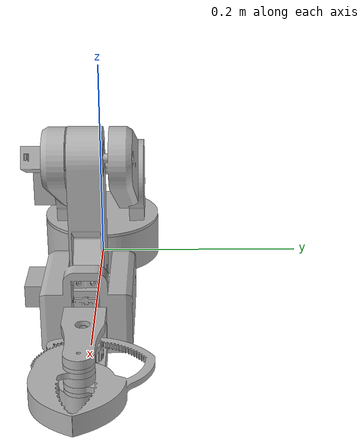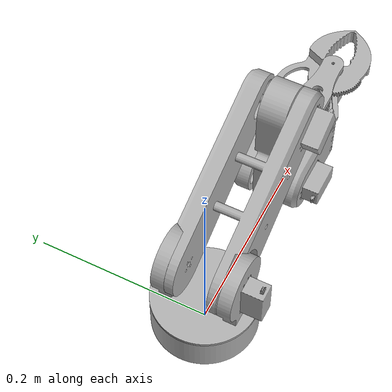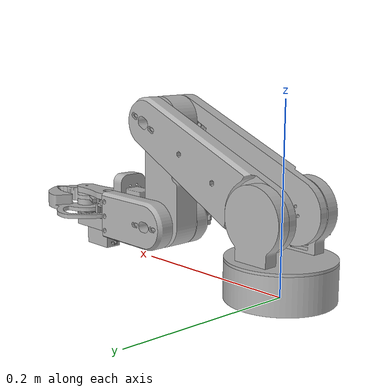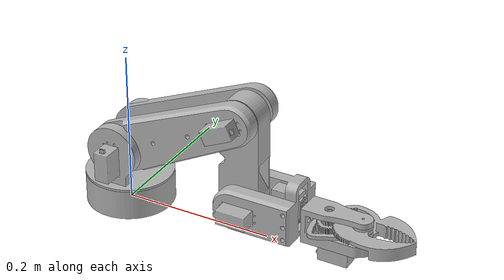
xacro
<?xml version="1.0" ?>
<robot name="braco_v2" xmlns:xacro="http://www.ros.org/wiki/xacro">

<xacro:include filename="$(find braco_v2_description)/urdf/materials.xacro" />
<xacro:include filename="$(find braco_v2_description)/urdf/braco_v2.trans" />
<xacro:include filename="$(find braco_v2_description)/urdf/braco_v2.gazebo" />
<link name="base_link">
  <inertial>
    <origin rpy="0 0 0" xyz="0.0 4.4408920985006264e-17 0.019999999999999983"/>
    <mass value="0.4404041661434851"/>
    <inertia ixx="0.000423" ixy="0.0" ixz="-0.0" iyy="0.000423" iyz="0.0" izz="0.000728"/>
  </inertial>
  <visual>
    <origin rpy="0 0 0" xyz="0 0 0"/>
    <geometry>
      <mesh filename="package://braco_v2_description/meshes/base_link.stl" scale="0.001 0.001 0.001"/>
    </geometry>
    <material name="silver"/>
  </visual>
  <collision>
    <origin rpy="0 0 0" xyz="0 0 0"/>
    <geometry>
      <mesh filename="package://braco_v2_description/meshes/base_link.stl" scale="0.001 0.001 0.001"/>
    </geometry>
  </collision>
</link>

<link name="Center_arm_v1_1">
  <inertial>
    <origin rpy="0 0 0" xyz="0.014277150157445656 0.009887184158138248 -0.05601557501701446"/>
    <mass value="0.24743903954578314"/>
    <inertia ixx="0.000535" ixy="0.0" ixz="0.000118" iyy="0.000605" iyz="-0.0" izz="0.000106"/>
  </inertial>
  <visual>
    <origin rpy="0 0 0" xyz="-0.142342 0.011691 -0.205954"/>
    <geometry>
      <mesh filename="package://braco_v2_description/meshes/Center_arm_v1_1.stl" scale="0.001 0.001 0.001"/>
    </geometry>
    <material name="silver"/>
  </visual>
  <collision>
    <origin rpy="0 0 0" xyz="-0.142342 0.011691 -0.205954"/>
    <geometry>
      <mesh filename="package://braco_v2_description/meshes/Center_arm_v1_1.stl" scale="0.001 0.001 0.001"/>
    </geometry>
  </collision>
</link>

<link name="Center_arm_bearing_guide_v1_1">
  <inertial>
    <origin rpy="0 0 0" xyz="-0.01039213224987559 0.003221962356880813 0.00600019094374038"/>
    <mass value="0.0033035453927957375"/>
    <inertia ixx="0.0" ixy="0.0" ixz="-0.0" iyy="0.0" iyz="-0.0" izz="0.0"/>
  </inertial>
  <visual>
    <origin rpy="0 0 0" xyz="-0.152734 -0.008309 -0.199954"/>
    <geometry>
      <mesh filename="package://braco_v2_description/meshes/Center_arm_bearing_guide_v1_1.stl" scale="0.001 0.001 0.001"/>
    </geometry>
    <material name="silver"/>
  </visual>
  <collision>
    <origin rpy="0 0 0" xyz="-0.152734 -0.008309 -0.199954"/>
    <geometry>
      <mesh filename="package://braco_v2_description/meshes/Center_arm_bearing_guide_v1_1.stl" scale="0.001 0.001 0.001"/>
    </geometry>
  </collision>
</link>

<link name="Center_arm_bearing_guide_v1__1__1">
  <inertial>
    <origin rpy="0 0 0" xyz="-0.0059998944503106 0.003221962356879297 -0.010392093645181094"/>
    <mass value="0.0033035453927957375"/>
    <inertia ixx="0.0" ixy="0.0" ixz="0.0" iyy="0.0" iyz="0.0" izz="0.0"/>
  </inertial>
  <visual>
    <origin rpy="0 0 0" xyz="-0.178753 -0.008309 -0.10285"/>
    <geometry>
      <mesh filename="package://braco_v2_description/meshes/Center_arm_bearing_guide_v1__1__1.stl" scale="0.001 0.001 0.001"/>
    </geometry>
    <material name="silver"/>
  </visual>
  <collision>
    <origin rpy="0 0 0" xyz="-0.178753 -0.008309 -0.10285"/>
    <geometry>
      <mesh filename="package://braco_v2_description/meshes/Center_arm_bearing_guide_v1__1__1.stl" scale="0.001 0.001 0.001"/>
    </geometry>
  </collision>
</link>

<link name="Center_arm_bearing_guide_clamp_v1_1">
  <inertial>
    <origin rpy="0 0 0" xyz="-1.322497980571491e-07 0.0016578450305448425 1.9094379913320303e-07"/>
    <mass value="0.00026744770959091237"/>
    <inertia ixx="0.0" ixy="-0.0" ixz="0.0" iyy="0.0" iyz="-0.0" izz="0.0"/>
  </inertial>
  <visual>
    <origin rpy="0 0 0" xyz="-0.142342 -0.021709 -0.205954"/>
    <geometry>
      <mesh filename="package://braco_v2_description/meshes/Center_arm_bearing_guide_clamp_v1_1.stl" scale="0.001 0.001 0.001"/>
    </geometry>
    <material name="silver"/>
  </visual>
  <collision>
    <origin rpy="0 0 0" xyz="-0.142342 -0.021709 -0.205954"/>
    <geometry>
      <mesh filename="package://braco_v2_description/meshes/Center_arm_bearing_guide_clamp_v1_1.stl" scale="0.001 0.001 0.001"/>
    </geometry>
  </collision>
</link>

<link name="servo_elbow_1">
  <inertial>
    <origin rpy="0 0 0" xyz="0.15754580602873644 0.20794860786324015 -0.030115300811952045"/>
    <mass value="0.2525786066068201"/>
    <inertia ixx="5.2e-05" ixy="-0.0" ixz="-1.4e-05" iyy="4.4e-05" iyz="-0.0" izz="5.7e-05"/>
  </inertial>
  <visual>
    <origin rpy="0 0 0" xyz="0.022846 0.244866 -0.229657"/>
    <geometry>
      <mesh filename="package://braco_v2_description/meshes/servo_elbow_1.stl" scale="0.001 0.001 0.001"/>
    </geometry>
    <material name="silver"/>
  </visual>
  <collision>
    <origin rpy="0 0 0" xyz="0.022846 0.244866 -0.229657"/>
    <geometry>
      <mesh filename="package://braco_v2_description/meshes/servo_elbow_1.stl" scale="0.001 0.001 0.001"/>
    </geometry>
  </collision>
</link>

<link name="servo_punho_rot_1">
  <inertial>
    <origin rpy="0 0 0" xyz="0.14034378523693494 -0.10986496796742812 -0.22086481094673482"/>
    <mass value="0.25257832542625036"/>
    <inertia ixx="4.4e-05" ixy="-0.0" ixz="1e-06" iyy="6.8e-05" iyz="0.0" izz="4.1e-05"/>
  </inertial>
  <visual>
    <origin rpy="0 0 0" xyz="-0.093832 -0.110262 -0.322983"/>
    <geometry>
      <mesh filename="package://braco_v2_description/meshes/servo_punho_rot_1.stl" scale="0.001 0.001 0.001"/>
    </geometry>
    <material name="silver"/>
  </visual>
  <collision>
    <origin rpy="0 0 0" xyz="-0.093832 -0.110262 -0.322983"/>
    <geometry>
      <mesh filename="package://braco_v2_description/meshes/servo_punho_rot_1.stl" scale="0.001 0.001 0.001"/>
    </geometry>
  </collision>
</link>

<link name="servo_punho_xy_1">
  <inertial>
    <origin rpy="0 0 0" xyz="0.009976146320704926 -0.02522641850043935 -6.558513723775583e-08"/>
    <mass value="0.25257832542625036"/>
    <inertia ixx="4.1e-05" ixy="1e-06" ixz="0.0" iyy="4.4e-05" iyz="-0.0" izz="6.8e-05"/>
  </inertial>
  <visual>
    <origin rpy="0 0 0" xyz="-0.172753 0.011691 -0.092458"/>
    <geometry>
      <mesh filename="package://braco_v2_description/meshes/servo_punho_xy_1.stl" scale="0.001 0.001 0.001"/>
    </geometry>
    <material name="silver"/>
  </visual>
  <collision>
    <origin rpy="0 0 0" xyz="-0.172753 0.011691 -0.092458"/>
    <geometry>
      <mesh filename="package://braco_v2_description/meshes/servo_punho_xy_1.stl" scale="0.001 0.001 0.001"/>
    </geometry>
  </collision>
</link>

<link name="punho_1">
  <inertial>
    <origin rpy="0 0 0" xyz="-0.1328033049390942 0.12072689824420818 0.028960027873234748"/>
    <mass value="0.21880690583277723"/>
    <inertia ixx="0.000235" ixy="1.1e-05" ixz="-7e-06" iyy="0.000273" iyz="0.0" izz="0.000371"/>
  </inertial>
  <visual>
    <origin rpy="0 0 0" xyz="-0.342104 0.118081 -0.064457"/>
    <geometry>
      <mesh filename="package://braco_v2_description/meshes/punho_1.stl" scale="0.001 0.001 0.001"/>
    </geometry>
    <material name="silver"/>
  </visual>
  <collision>
    <origin rpy="0 0 0" xyz="-0.342104 0.118081 -0.064457"/>
    <geometry>
      <mesh filename="package://braco_v2_description/meshes/punho_1.stl" scale="0.001 0.001 0.001"/>
    </geometry>
  </collision>
</link>

<link name="Center_arm_bearing_guide_clamp_v1_punho_1">
  <inertial>
    <origin rpy="0 0 0" xyz="1.05549629869639e-07 0.0016578450305445892 -9.36450987448767e-08"/>
    <mass value="0.00026744770959091237"/>
    <inertia ixx="0.0" ixy="0.0" ixz="-0.0" iyy="0.0" iyz="-0.0" izz="0.0"/>
  </inertial>
  <visual>
    <origin rpy="0 0 0" xyz="-0.172753 -0.021709 -0.092458"/>
    <geometry>
      <mesh filename="package://braco_v2_description/meshes/Center_arm_bearing_guide_clamp_v1_punho_1.stl" scale="0.001 0.001 0.001"/>
    </geometry>
    <material name="silver"/>
  </visual>
  <collision>
    <origin rpy="0 0 0" xyz="-0.172753 -0.021709 -0.092458"/>
    <geometry>
      <mesh filename="package://braco_v2_description/meshes/Center_arm_bearing_guide_clamp_v1_punho_1.stl" scale="0.001 0.001 0.001"/>
    </geometry>
  </collision>
</link>

<link name="corpo_garra_1">
  <inertial>
    <origin rpy="0 0 0" xyz="0.03690104485756707 3.972525702432197e-09 -0.004369986373359419"/>
    <mass value="0.0475742677792808"/>
    <inertia ixx="2e-05" ixy="-0.0" ixz="2e-06" iyy="5.2e-05" iyz="0.0" izz="4.3e-05"/>
  </inertial>
  <visual>
    <origin rpy="0 0 0" xyz="-0.259402 -0.000397 -0.092142"/>
    <geometry>
      <mesh filename="package://braco_v2_description/meshes/corpo_garra_1.stl" scale="0.001 0.001 0.001"/>
    </geometry>
    <material name="silver"/>
  </visual>
  <collision>
    <origin rpy="0 0 0" xyz="-0.259402 -0.000397 -0.092142"/>
    <geometry>
      <mesh filename="package://braco_v2_description/meshes/corpo_garra_1.stl" scale="0.001 0.001 0.001"/>
    </geometry>
  </collision>
</link>

<link name="Bearing_guide_v1_1">
  <inertial>
    <origin rpy="0 0 0" xyz="4.6121928154452263e-07 3.97206351886387e-09 0.01725014828221419"/>
    <mass value="0.0016815613439380714"/>
    <inertia ixx="0.0" ixy="0.0" ixz="-0.0" iyy="0.0" iyz="-0.0" izz="0.0"/>
  </inertial>
  <visual>
    <origin rpy="0 0 0" xyz="-0.334152 -0.000397 -0.074892"/>
    <geometry>
      <mesh filename="package://braco_v2_description/meshes/Bearing_guide_v1_1.stl" scale="0.001 0.001 0.001"/>
    </geometry>
    <material name="silver"/>
  </visual>
  <collision>
    <origin rpy="0 0 0" xyz="-0.334152 -0.000397 -0.074892"/>
    <geometry>
      <mesh filename="package://braco_v2_description/meshes/Bearing_guide_v1_1.stl" scale="0.001 0.001 0.001"/>
    </geometry>
  </collision>
</link>

<link name="Bearing_top-bottom_bushing_v1_1">
  <inertial>
    <origin rpy="0 0 0" xyz="4.6121928093389997e-07 3.972462620622456e-09 -0.001749851717786216"/>
    <mass value="0.0016106179771745465"/>
    <inertia ixx="0.0" ixy="0.0" ixz="0.0" iyy="0.0" iyz="-0.0" izz="0.0"/>
  </inertial>
  <visual>
    <origin rpy="0 0 0" xyz="-0.334152 -0.000397 -0.104392"/>
    <geometry>
      <mesh filename="package://braco_v2_description/meshes/Bearing_top-bottom_bushing_v1_1.stl" scale="0.001 0.001 0.001"/>
    </geometry>
    <material name="silver"/>
  </visual>
  <collision>
    <origin rpy="0 0 0" xyz="-0.334152 -0.000397 -0.104392"/>
    <geometry>
      <mesh filename="package://braco_v2_description/meshes/Bearing_top-bottom_bushing_v1_1.stl" scale="0.001 0.001 0.001"/>
    </geometry>
  </collision>
</link>

<link name="Bearing_top-bottom_bushing_v1__1__1">
  <inertial>
    <origin rpy="0 0 0" xyz="4.612192812114557e-07 3.9724627058407465e-09 0.0017501482822140368"/>
    <mass value="0.0016106179771745465"/>
    <inertia ixx="0.0" ixy="0.0" ixz="0.0" iyy="0.0" iyz="-0.0" izz="0.0"/>
  </inertial>
  <visual>
    <origin rpy="0 0 0" xyz="-0.334152 -0.000397 -0.079892"/>
    <geometry>
      <mesh filename="package://braco_v2_description/meshes/Bearing_top-bottom_bushing_v1__1__1.stl" scale="0.001 0.001 0.001"/>
    </geometry>
    <material name="silver"/>
  </visual>
  <collision>
    <origin rpy="0 0 0" xyz="-0.334152 -0.000397 -0.079892"/>
    <geometry>
      <mesh filename="package://braco_v2_description/meshes/Bearing_top-bottom_bushing_v1__1__1.stl" scale="0.001 0.001 0.001"/>
    </geometry>
  </collision>
</link>

<link name="Bearing_center_bushing_v1_1">
  <inertial>
    <origin rpy="0 0 0" xyz="0.09827446121928143 0.04192300397246268 0.11753614828221406"/>
    <mass value="0.0034513242368025996"/>
    <inertia ixx="0.0" ixy="0.0" ixz="0.0" iyy="0.0" iyz="-0.0" izz="0.0"/>
  </inertial>
  <visual>
    <origin rpy="0 0 0" xyz="-0.235878 0.041526 0.025394"/>
    <geometry>
      <mesh filename="package://braco_v2_description/meshes/Bearing_center_bushing_v1_1.stl" scale="0.001 0.001 0.001"/>
    </geometry>
    <material name="silver"/>
  </visual>
  <collision>
    <origin rpy="0 0 0" xyz="-0.235878 0.041526 0.025394"/>
    <geometry>
      <mesh filename="package://braco_v2_description/meshes/Bearing_center_bushing_v1_1.stl" scale="0.001 0.001 0.001"/>
    </geometry>
  </collision>
</link>

<link name="servo_garra_1">
  <inertial>
    <origin rpy="0 0 0" xyz="0.053330533392260265 -0.018574770578143565 0.08636947229986802"/>
    <mass value="0.25257832542625036"/>
    <inertia ixx="4.1e-05" ixy="-0.0" ixz="1e-06" iyy="6.8e-05" iyz="0.0" izz="4.4e-05"/>
  </inertial>
  <visual>
    <origin rpy="0 0 0" xyz="-0.245878 -0.018974 0.025394"/>
    <geometry>
      <mesh filename="package://braco_v2_description/meshes/servo_garra_1.stl" scale="0.001 0.001 0.001"/>
    </geometry>
    <material name="silver"/>
  </visual>
  <collision>
    <origin rpy="0 0 0" xyz="-0.245878 -0.018974 0.025394"/>
    <geometry>
      <mesh filename="package://braco_v2_description/meshes/servo_garra_1.stl" scale="0.001 0.001 0.001"/>
    </geometry>
  </collision>
</link>

<link name="Gripper_120T_v1_1">
  <inertial>
    <origin rpy="0 0 0" xyz="0.010502843706276688 0.0181735244198357 0.006028625191617287"/>
    <mass value="0.031315152970389164"/>
    <inertia ixx="1e-05" ixy="-4e-06" ixz="-3e-06" iyy="4e-05" iyz="-0.0" izz="4.8e-05"/>
  </inertial>
  <visual>
    <origin rpy="0 0 0" xyz="-0.334152 -0.000397 -0.083392"/>
    <geometry>
      <mesh filename="package://braco_v2_description/meshes/Gripper_120T_v1_1.stl" scale="0.001 0.001 0.001"/>
    </geometry>
    <material name="silver"/>
  </visual>
  <collision>
    <origin rpy="0 0 0" xyz="-0.334152 -0.000397 -0.083392"/>
    <geometry>
      <mesh filename="package://braco_v2_description/meshes/Gripper_120T_v1_1.stl" scale="0.001 0.001 0.001"/>
    </geometry>
  </collision>
</link>

<link name="Gripper_72T_v1_1">
  <inertial>
    <origin rpy="0 0 0" xyz="0.020484421154321197 -0.01768686032720145 -0.0012214830647412217"/>
    <mass value="0.0250024753894087"/>
    <inertia ixx="4e-06" ixy="2e-06" ixz="2e-06" iyy="2e-05" iyz="-0.0" izz="2.2e-05"/>
  </inertial>
  <visual>
    <origin rpy="0 0 0" xyz="-0.334152 -0.000397 -0.095892"/>
    <geometry>
      <mesh filename="package://braco_v2_description/meshes/Gripper_72T_v1_1.stl" scale="0.001 0.001 0.001"/>
    </geometry>
    <material name="silver"/>
  </visual>
  <collision>
    <origin rpy="0 0 0" xyz="-0.334152 -0.000397 -0.095892"/>
    <geometry>
      <mesh filename="package://braco_v2_description/meshes/Gripper_72T_v1_1.stl" scale="0.001 0.001 0.001"/>
    </geometry>
  </collision>
</link>

<link name="Servo_gear_v1_1">
  <inertial>
    <origin rpy="0 0 0" xyz="4.926212099354288e-07 2.574818621269492e-07 0.0043180267545464834"/>
    <mass value="0.010154744217590462"/>
    <inertia ixx="1e-06" ixy="0.0" ixz="0.0" iyy="1e-06" iyz="0.0" izz="1e-06"/>
  </inertial>
  <visual>
    <origin rpy="0 0 0" xyz="-0.289232 -0.000399 -0.086202"/>
    <geometry>
      <mesh filename="package://braco_v2_description/meshes/Servo_gear_v1_1.stl" scale="0.001 0.001 0.001"/>
    </geometry>
    <material name="silver"/>
  </visual>
  <collision>
    <origin rpy="0 0 0" xyz="-0.289232 -0.000399 -0.086202"/>
    <geometry>
      <mesh filename="package://braco_v2_description/meshes/Servo_gear_v1_1.stl" scale="0.001 0.001 0.001"/>
    </geometry>
  </collision>
</link>

<link name="servo_right_1">
  <inertial>
    <origin rpy="0 0 0" xyz="0.045095727044045304 0.0126085814995585 0.08368692782702274"/>
    <mass value="0.25257832542625036"/>
    <inertia ixx="6.8e-05" ixy="-0.0" ixz="-0.0" iyy="4.4e-05" iyz="-1e-06" izz="4.1e-05"/>
  </inertial>
  <visual>
    <origin rpy="0 0 0" xyz="0.043653 0.060836 0.007493"/>
    <geometry>
      <mesh filename="package://braco_v2_description/meshes/servo_right_1.stl" scale="0.001 0.001 0.001"/>
    </geometry>
    <material name="silver"/>
  </visual>
  <collision>
    <origin rpy="0 0 0" xyz="0.043653 0.060836 0.007493"/>
    <geometry>
      <mesh filename="package://braco_v2_description/meshes/servo_right_1.stl" scale="0.001 0.001 0.001"/>
    </geometry>
  </collision>
</link>

<link name="ombro_1">
  <inertial>
    <origin rpy="0 0 0" xyz="0.07104948639429079 0.02440644138217429 0.060376060535231424"/>
    <mass value="0.488316525379642"/>
    <inertia ixx="0.00123" ixy="-2.9e-05" ixz="-0.000812" iyy="0.001965" iyz="-2.5e-05" izz="0.001495"/>
  </inertial>
  <visual>
    <origin rpy="0 0 0" xyz="-0.001443 0.023001 -0.08617"/>
    <geometry>
      <mesh filename="package://braco_v2_description/meshes/ombro_1.stl" scale="0.001 0.001 0.001"/>
    </geometry>
    <material name="silver"/>
  </visual>
  <collision>
    <origin rpy="0 0 0" xyz="-0.001443 0.023001 -0.08617"/>
    <geometry>
      <mesh filename="package://braco_v2_description/meshes/ombro_1.stl" scale="0.001 0.001 0.001"/>
    </geometry>
  </collision>
</link>

<link name="tampa_1">
  <inertial>
    <origin rpy="0 0 0" xyz="0.0011216189485683523 0.004916751779089888 0.03437462699193116"/>
    <mass value="0.1480855028648141"/>
    <inertia ixx="0.000274" ixy="-0.0" ixz="-2e-06" iyy="0.00016" iyz="-1e-06" izz="0.000246"/>
  </inertial>
  <visual>
    <origin rpy="0 0 0" xyz="-0.0 0.0 -0.04"/>
    <geometry>
      <mesh filename="package://braco_v2_description/meshes/tampa_1.stl" scale="0.001 0.001 0.001"/>
    </geometry>
    <material name="silver"/>
  </visual>
  <collision>
    <origin rpy="0 0 0" xyz="-0.0 0.0 -0.04"/>
    <geometry>
      <mesh filename="package://braco_v2_description/meshes/tampa_1.stl" scale="0.001 0.001 0.001"/>
    </geometry>
  </collision>
</link>

<joint name="Rev52" type="continuous">
  <origin rpy="0 0 0" xyz="0.165188 0.233175 -0.023703"/>
  <parent link="servo_elbow_1"/>
  <child link="Center_arm_v1_1"/>
  <axis xyz="0.0 1.0 0.0"/>
</joint>

<joint name="Rigid54" type="fixed">
  <origin rpy="0 0 0" xyz="0.010392 0.02 -0.006"/>
  <parent link="Center_arm_v1_1"/>
  <child link="Center_arm_bearing_guide_v1_1"/>
</joint>

<joint name="Rigid56" type="fixed">
  <origin rpy="0 0 0" xyz="0.036411 0.02 -0.103104"/>
  <parent link="Center_arm_v1_1"/>
  <child link="Center_arm_bearing_guide_v1__1__1"/>
</joint>

<joint name="Rigid58" type="fixed">
  <origin rpy="0 0 0" xyz="-0.010392 0.0134 0.006"/>
  <parent link="Center_arm_bearing_guide_v1_1"/>
  <child link="Center_arm_bearing_guide_clamp_v1_1"/>
</joint>

<joint name="Rigid65" type="fixed">
  <origin rpy="0 0 0" xyz="-0.024289 -0.221865 0.143487"/>
  <parent link="ombro_1"/>
  <child link="servo_elbow_1"/>
</joint>

<joint name="Rigid70" type="fixed">
  <origin rpy="0 0 0" xyz="-0.248272 0.228343 0.258526"/>
  <parent link="punho_1"/>
  <child link="servo_punho_rot_1"/>
</joint>

<joint name="Rev71" type="continuous">
  <origin rpy="0 0 0" xyz="0.030411 0.0 -0.113496"/>
  <parent link="Center_arm_v1_1"/>
  <child link="servo_punho_xy_1"/>
  <axis xyz="-0.0 -1.0 -0.0"/>
</joint>

<joint name="Rigid72" type="fixed">
  <origin rpy="0 0 0" xyz="0.169351 -0.10639 -0.028001"/>
  <parent link="servo_punho_xy_1"/>
  <child link="punho_1"/>
</joint>

<joint name="Rigid74" type="fixed">
  <origin rpy="0 0 0" xyz="-0.006 0.0134 -0.010392"/>
  <parent link="Center_arm_bearing_guide_v1__1__1"/>
  <child link="Center_arm_bearing_guide_clamp_v1_punho_1"/>
</joint>

<joint name="Rev81" type="continuous">
  <origin rpy="0 0 0" xyz="0.16557 -0.109865 -0.230841"/>
  <parent link="servo_punho_rot_1"/>
  <child link="corpo_garra_1"/>
  <axis xyz="1.0 0.0 -0.0"/>
</joint>

<joint name="Rigid82" type="fixed">
  <origin rpy="0 0 0" xyz="0.07475 0.0 -0.01725"/>
  <parent link="corpo_garra_1"/>
  <child link="Bearing_guide_v1_1"/>
</joint>

<joint name="Rigid83" type="fixed">
  <origin rpy="0 0 0" xyz="0.07475 0.0 0.01225"/>
  <parent link="corpo_garra_1"/>
  <child link="Bearing_top-bottom_bushing_v1_1"/>
</joint>

<joint name="Rigid84" type="fixed">
  <origin rpy="0 0 0" xyz="0.07475 0.0 -0.01225"/>
  <parent link="corpo_garra_1"/>
  <child link="Bearing_top-bottom_bushing_v1__1__1"/>
</joint>

<joint name="Rigid85" type="fixed">
  <origin rpy="0 0 0" xyz="-0.023524 -0.041923 -0.117536"/>
  <parent link="corpo_garra_1"/>
  <child link="Bearing_center_bushing_v1_1"/>
</joint>

<joint name="Rigid86" type="fixed">
  <origin rpy="0 0 0" xyz="-0.013524 0.018577 -0.117536"/>
  <parent link="corpo_garra_1"/>
  <child link="servo_garra_1"/>
</joint>

<joint name="Rev87" type="revolute">
  <origin rpy="0 0 0" xyz="0.0 0.0 0.0035"/>
  <parent link="Bearing_top-bottom_bushing_v1__1__1"/>
  <child link="Gripper_120T_v1_1"/>
  <axis xyz="0.0 -0.0 1.0"/>
  <limit effort="100" lower="0.0" upper="0.785398" velocity="100"/>
</joint>

<joint name="Rev88" type="revolute">
  <origin rpy="0 0 0" xyz="0.098274 0.041923 0.121286"/>
  <parent link="Bearing_center_bushing_v1_1"/>
  <child link="Gripper_72T_v1_1"/>
  <axis xyz="0.0 -0.0 1.0"/>
  <limit effort="100" lower="-0.785398" upper="0.0" velocity="100"/>
</joint>

<joint name="Rev89" type="continuous">
  <origin rpy="0 0 0" xyz="0.043354 -0.018575 0.111596"/>
  <parent link="servo_garra_1"/>
  <child link="Servo_gear_v1_1"/>
  <axis xyz="0.0 -0.0 1.0"/>
</joint>

<joint name="Rigid94" type="fixed">
  <origin rpy="0 0 0" xyz="-0.043653 -0.060836 -0.047493"/>
  <parent link="tampa_1"/>
  <child link="servo_right_1"/>
</joint>

<joint name="Rev95" type="continuous">
  <origin rpy="0 0 0" xyz="0.045096 0.037835 0.093663"/>
  <parent link="servo_right_1"/>
  <child link="ombro_1"/>
  <axis xyz="0.0 1.0 0.0"/>
</joint>

<joint name="Rev96" type="continuous">
  <origin rpy="0 0 0" xyz="0.0 0.0 0.04"/>
  <parent link="base_link"/>
  <child link="tampa_1"/>
  <axis xyz="0.0 0.0 1.0"/>
</joint>

</robot>

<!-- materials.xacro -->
<robot name="braco_v2" xmlns:xacro="http://www.ros.org/wiki/xacro" >

<material name="silver">
  <color rgba="0.700 0.700 0.700 1.000"/>
</material>

</robot>

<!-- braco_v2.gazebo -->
<robot name="braco_v2" xmlns:xacro="http://www.ros.org/wiki/xacro" >

<xacro:property name="body_color" value="Gazebo/Silver" />

<gazebo>
  <plugin filename="libgazebo_ros_control.so" name="control"/>
</gazebo>
<gazebo reference="base_link">
  <material>${body_color}</material>
  <mu1>0.2</mu1>
  <mu2>0.2</mu2>
  <selfCollide>true</selfCollide>
  <gravity>true</gravity>
</gazebo>

<gazebo reference="Center_arm_v1_1">
  <material>${body_color}</material>
  <mu1>0.2</mu1>
  <mu2>0.2</mu2>
  <selfCollide>true</selfCollide>
</gazebo>

<gazebo reference="Center_arm_bearing_guide_v1_1">
  <material>${body_color}</material>
  <mu1>0.2</mu1>
  <mu2>0.2</mu2>
  <selfCollide>true</selfCollide>
</gazebo>

<gazebo reference="Center_arm_bearing_guide_v1__1__1">
  <material>${body_color}</material>
  <mu1>0.2</mu1>
  <mu2>0.2</mu2>
  <selfCollide>true</selfCollide>
</gazebo>

<gazebo reference="Center_arm_bearing_guide_clamp_v1_1">
  <material>${body_color}</material>
  <mu1>0.2</mu1>
  <mu2>0.2</mu2>
  <selfCollide>true</selfCollide>
</gazebo>

<gazebo reference="servo_elbow_1">
  <material>${body_color}</material>
  <mu1>0.2</mu1>
  <mu2>0.2</mu2>
  <selfCollide>true</selfCollide>
</gazebo>

<gazebo reference="servo_punho_rot_1">
  <material>${body_color}</material>
  <mu1>0.2</mu1>
  <mu2>0.2</mu2>
  <selfCollide>true</selfCollide>
</gazebo>

<gazebo reference="servo_punho_xy_1">
  <material>${body_color}</material>
  <mu1>0.2</mu1>
  <mu2>0.2</mu2>
  <selfCollide>true</selfCollide>
</gazebo>

<gazebo reference="punho_1">
  <material>${body_color}</material>
  <mu1>0.2</mu1>
  <mu2>0.2</mu2>
  <selfCollide>true</selfCollide>
</gazebo>

<gazebo reference="Center_arm_bearing_guide_clamp_v1_punho_1">
  <material>${body_color}</material>
  <mu1>0.2</mu1>
  <mu2>0.2</mu2>
  <selfCollide>true</selfCollide>
</gazebo>

<gazebo reference="corpo_garra_1">
  <material>${body_color}</material>
  <mu1>0.2</mu1>
  <mu2>0.2</mu2>
  <selfCollide>true</selfCollide>
</gazebo>

<gazebo reference="Bearing_guide_v1_1">
  <material>${body_color}</material>
  <mu1>0.2</mu1>
  <mu2>0.2</mu2>
  <selfCollide>true</selfCollide>
</gazebo>

<gazebo reference="Bearing_top-bottom_bushing_v1_1">
  <material>${body_color}</material>
  <mu1>0.2</mu1>
  <mu2>0.2</mu2>
  <selfCollide>true</selfCollide>
</gazebo>

<gazebo reference="Bearing_top-bottom_bushing_v1__1__1">
  <material>${body_color}</material>
  <mu1>0.2</mu1>
  <mu2>0.2</mu2>
  <selfCollide>true</selfCollide>
</gazebo>

<gazebo reference="Bearing_center_bushing_v1_1">
  <material>${body_color}</material>
  <mu1>0.2</mu1>
  <mu2>0.2</mu2>
  <selfCollide>true</selfCollide>
</gazebo>

<gazebo reference="servo_garra_1">
  <material>${body_color}</material>
  <mu1>0.2</mu1>
  <mu2>0.2</mu2>
  <selfCollide>true</selfCollide>
</gazebo>

<gazebo reference="Gripper_120T_v1_1">
  <material>${body_color}</material>
  <mu1>0.2</mu1>
  <mu2>0.2</mu2>
  <selfCollide>true</selfCollide>
</gazebo>

<gazebo reference="Gripper_72T_v1_1">
  <material>${body_color}</material>
  <mu1>0.2</mu1>
  <mu2>0.2</mu2>
  <selfCollide>true</selfCollide>
</gazebo>

<gazebo reference="Servo_gear_v1_1">
  <material>${body_color}</material>
  <mu1>0.2</mu1>
  <mu2>0.2</mu2>
  <selfCollide>true</selfCollide>
</gazebo>

<gazebo reference="servo_right_1">
  <material>${body_color}</material>
  <mu1>0.2</mu1>
  <mu2>0.2</mu2>
  <selfCollide>true</selfCollide>
</gazebo>

<gazebo reference="ombro_1">
  <material>${body_color}</material>
  <mu1>0.2</mu1>
  <mu2>0.2</mu2>
  <selfCollide>true</selfCollide>
</gazebo>

<gazebo reference="tampa_1">
  <material>${body_color}</material>
  <mu1>0.2</mu1>
  <mu2>0.2</mu2>
  <selfCollide>true</selfCollide>
</gazebo>

</robot>
